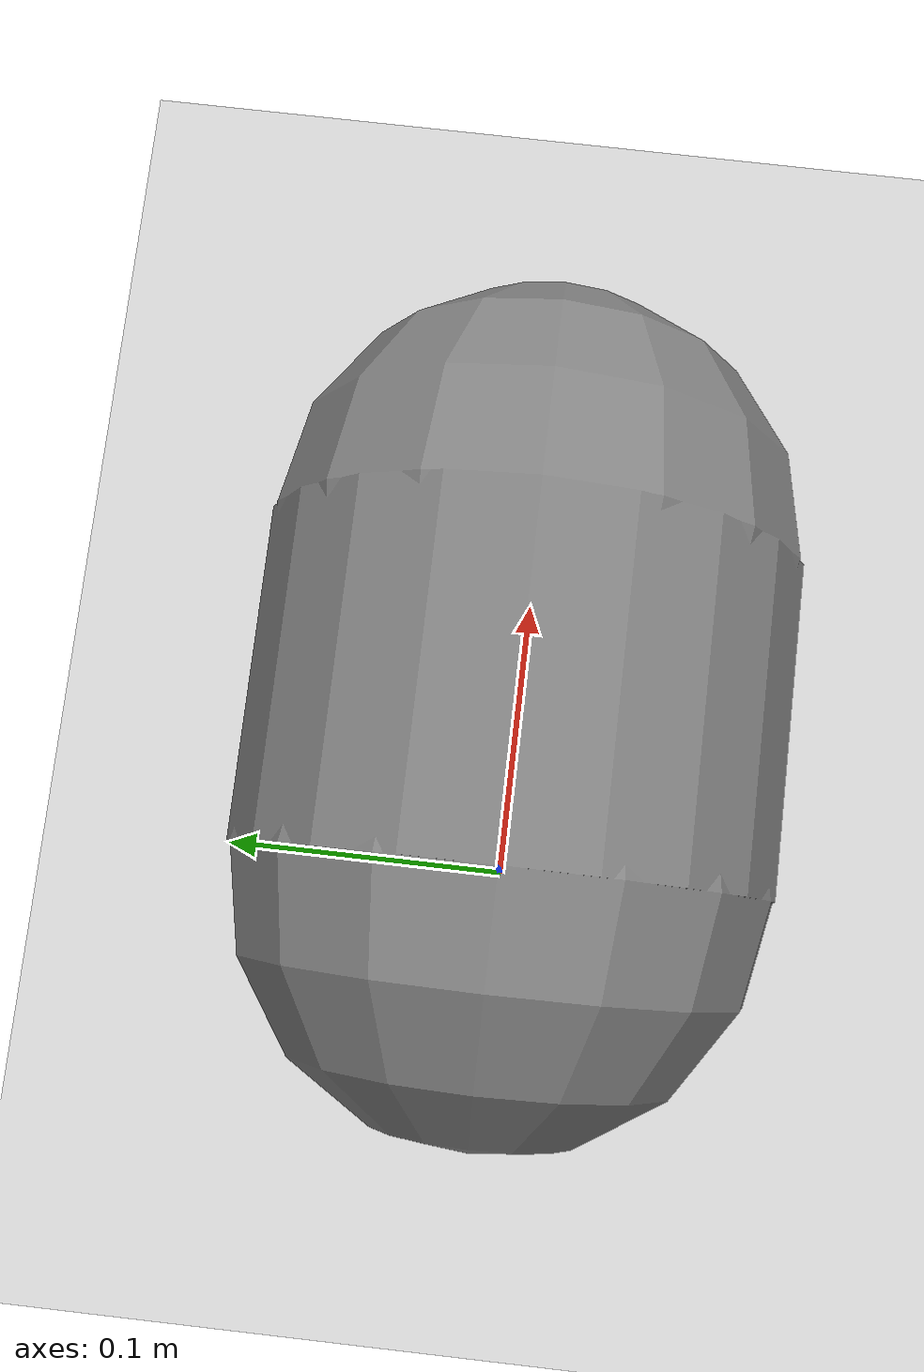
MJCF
<mujoco model="two-link planar reacher">
  <default>
    <joint axis="0 0 1" limited="false"/>
    <default class="joint_class1">
      <joint type="slide" range="-10 10" stiffness="10" damping="0.01"/>
      <default class="joint_class2">
        <joint type="slide" axis="1 0 0" pos="0 1 1"/>
      </default>
    </default>
  </default>

  <worldbody>
    <geom name="ground" type="plane" pos="0 0 0" size=".3 .3 10"/>
    <body name="body1">
      <geom name="geom1" type="capsule" fromto="0 0 0 0.12 0 0" size=".01"/>
      <joint name="shoulder"/>
      <joint axis="0 1 0" limited="true" range="-10 10" springref="1.1" frictionloss="2.0"/>
      <body name="body2">
        <geom name="geom2" type="capsule" fromto="0 0 0 0.12 0 0" size=".1"/>
        <geom name="geom3" type="capsule" fromto="0 0 0 0.12 0 0" size=".1"/>
        <joint type="slide" axis="0 0 1" limited="true" range="-5 5" pos="2 2 2"/>
        <body name="body3" childclass="joint_class1">
          <geom name="geom4" type="capsule" fromto="0 0 0 0.12 0 0" size=".1"/>
          <joint type="slide" limited="true" range="-7 7" class="joint_class2"/>
          <joint type="ball"/>
        </body>
      </body>
    </body>
  </worldbody>
</mujoco>
